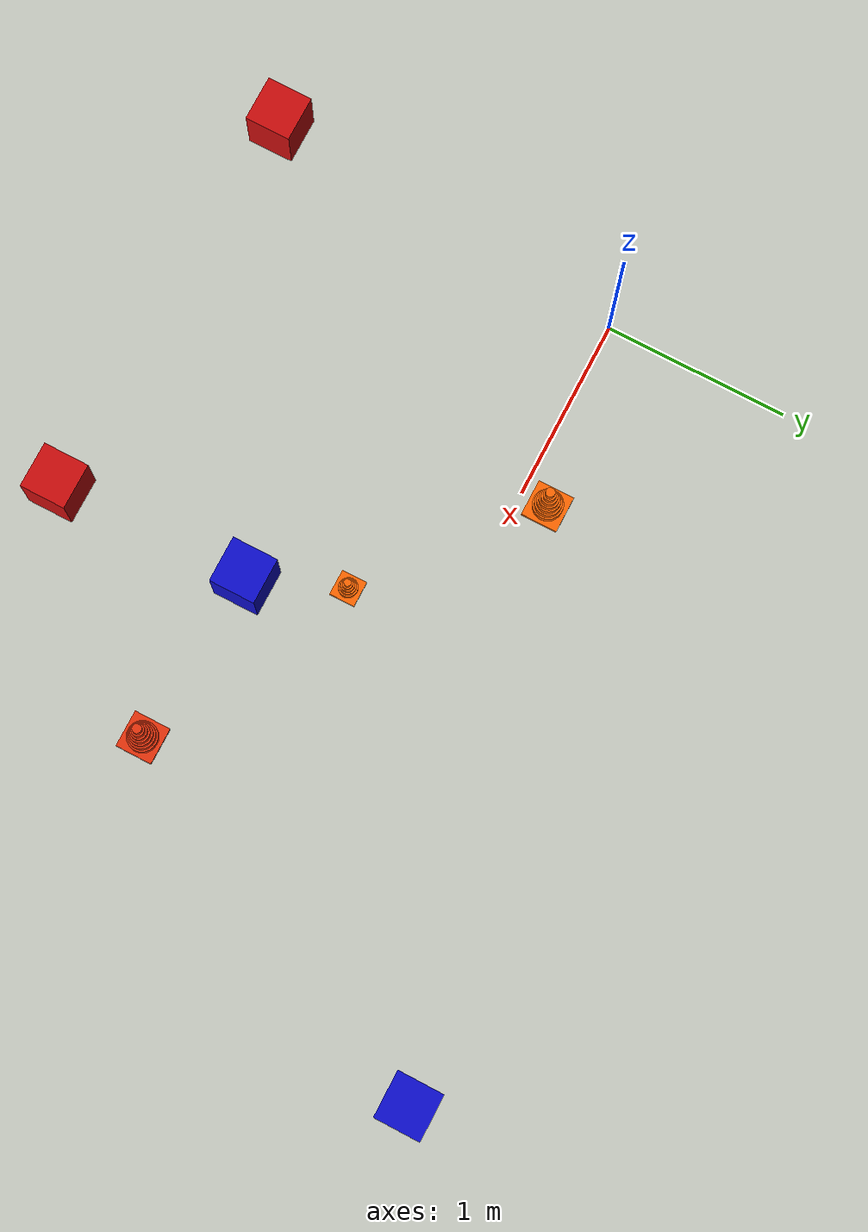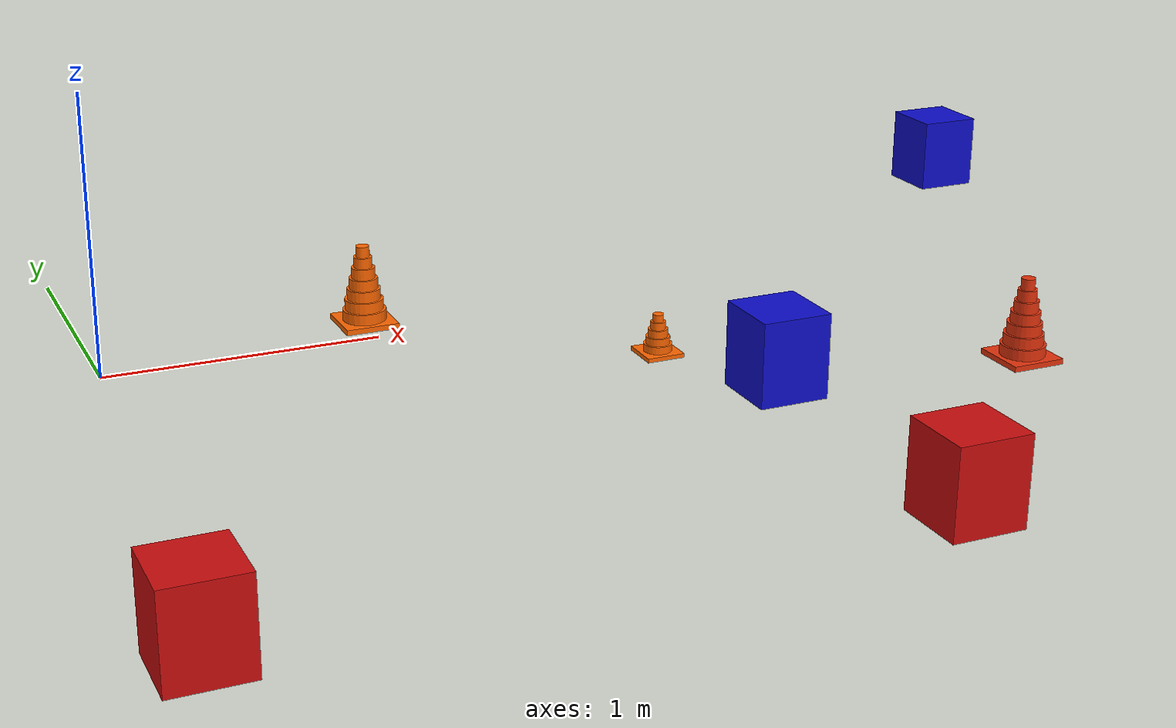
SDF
<sdf version="1.5">
 <world name="maze_6x5_v1_victimas">
  <physics type="ode">
   <max_step_size>0.001</max_step_size>
   <real_time_factor>1</real_time_factor>
   <real_time_update_rate>1000</real_time_update_rate>
   <gravity>0 0 -9.8</gravity>
  </physics>
  <plugin filename="gz-sim-physics-system" name="gz::sim::systems::Physics"/>
  <plugin filename="gz-sim-user-commands-system" name="gz::sim::systems::UserCommands"/>
  <plugin filename="gz-sim-scene-broadcaster-system" name="gz::sim::systems::SceneBroadcaster"/>
  <plugin filename="gz-sim-contact-system" name="gz::sim::systems::Contact"/>
  <plugin filename="gz-sim-sensors-system" name="gz::sim::systems::Sensors">
   <render_engine>ogre2</render_engine>
  </plugin>
  <plugin filename="gz-sim-imu-system" name="gz::sim::systems::Imu"/>
  <scene>
   <shadows>false</shadows>
   <ambient>0.2 0.2 0.2 1</ambient>
   <background>1 1 1 1</background>
   <grid>false</grid>
   <origin_visual>false</origin_visual>
  </scene>
  <include><uri>model://sun</uri></include>
  <light name="camera_spot_1_light" type="spot">
   <pose>-6 4 4 0 -1 -0.8</pose>
   <diffuse>0.5 0.5 0.5 1</diffuse>
   <specular>0.1 0.1 0.1 1</specular>
   <direction>0 0 -1</direction>
   <attenuation>
    <range>20</range>
    <constant>0.2</constant>
    <linear>0.01</linear>
    <quadratic>0.001</quadratic>
   </attenuation>
   <cast_shadows>0</cast_shadows>
   <spot><inner_angle>0.6</inner_angle><outer_angle>1</outer_angle><falloff>1</falloff></spot>
  </light>
  <light name="camera_spot_2_light" type="spot">
   <pose>5 -3 4 0 0.8 -0.6</pose>
   <diffuse>0.5 0.5 0.5 1</diffuse>
   <specular>0.1 0.1 0.1 1</specular>
   <direction>0 0 -1</direction>
   <attenuation>
    <range>20</range>
    <constant>0.3</constant>
    <linear>0.01</linear>
    <quadratic>0.001</quadratic>
   </attenuation>
   <cast_shadows>0</cast_shadows>
   <spot><inner_angle>0.6</inner_angle><outer_angle>1</outer_angle><falloff>1</falloff></spot>
  </light>
  <model name="marcas_color">
   <static>1</static>
   <link name="cuadrado_rojo_1">
    <pose>-0.1698 -2.0228 0.15 0 0 0</pose>
    <collision name="collision"><geometry><box><size>0.25 0.25 0.3</size></box></geometry></collision>
    <visual name="visual">
     <geometry><box><size>0.25 0.25 0.3</size></box></geometry>
     <material>
      <ambient>0.8 0.05 0.05 1</ambient>
      <diffuse>0.8 0.05 0.05 1</diffuse>
      <specular>0.1 0.1 0.1 1</specular>
     </material>
    </visual>
   </link>
   <link name="cuadrado_azul_1">
    <pose>2.0594 -1.0174 0.15 0 0 0</pose>
    <collision name="collision"><geometry><box><size>0.25 0.25 0.3</size></box></geometry></collision>
    <visual name="visual">
     <geometry><box><size>0.25 0.25 0.3</size></box></geometry>
     <material>
      <ambient>0.05 0.05 0.8 1</ambient>
      <diffuse>0.05 0.05 0.8 1</diffuse>
      <specular>0.1 0.1 0.1 1</specular>
     </material>
    </visual>
   </link>
   <link name="cuadrado_rojo_2">
    <pose>2.0734 -2.0864 0.15 0 0 0</pose>
    <collision name="collision"><geometry><box><size>0.25 0.25 0.3</size></box></geometry></collision>
    <visual name="visual">
     <geometry><box><size>0.25 0.25 0.3</size></box></geometry>
     <material>
      <ambient>0.8 0.05 0.05 1</ambient>
      <diffuse>0.8 0.05 0.05 1</diffuse>
      <specular>0.1 0.1 0.1 1</specular>
     </material>
    </visual>
   </link>
   <link name="cuadrado_azul_2">
    <pose>3.9811 0.9197 0.15 0 0 0</pose>
    <collision name="collision"><geometry><box><size>0.25 0.25 0.3</size></box></geometry></collision>
    <visual name="visual">
     <geometry><box><size>0.25 0.25 0.3</size></box></geometry>
     <material>
      <ambient>0.05 0.05 0.8 1</ambient>
      <diffuse>0.05 0.05 0.8 1</diffuse>
      <specular>0.1 0.1 0.1 1</specular>
     </material>
    </visual>
   </link>
  </model>
  <model name="senuelo_cono_alto">
   <static>1</static>
   <pose>1.0 0.15 0 0 0 0</pose>
   <link name="senuelo_cono_alto">
    <collision name="c0">
     <pose>0 0 0.0100 0 0 0</pose>
     <geometry><box><size>0.2 0.2 0.02</size></box></geometry>
    </collision>
    <visual name="v0">
     <pose>0 0 0.0100 0 0 0</pose>
     <geometry><box><size>0.2 0.2 0.02</size></box></geometry>
     <material>
      <ambient>1.00 0.40 0.00 1</ambient>
      <diffuse>1.00 0.40 0.00 1</diffuse>
      <specular>0.1 0.1 0.1 1</specular>
     </material>
    </visual>
    <collision name="c1">
     <pose>0 0 0.0400 0 0 0</pose>
     <geometry><cylinder><radius>0.0804</radius><length>0.0400</length></cylinder></geometry>
    </collision>
    <visual name="v1">
     <pose>0 0 0.0400 0 0 0</pose>
     <geometry><cylinder><radius>0.0804</radius><length>0.0400</length></cylinder></geometry>
     <material>
      <ambient>1.00 0.40 0.00 1</ambient>
      <diffuse>1.00 0.40 0.00 1</diffuse>
      <specular>0.1 0.1 0.1 1</specular>
     </material>
    </visual>
    <collision name="c2">
     <pose>0 0 0.0800 0 0 0</pose>
     <geometry><cylinder><radius>0.0711</radius><length>0.0400</length></cylinder></geometry>
    </collision>
    <visual name="v2">
     <pose>0 0 0.0800 0 0 0</pose>
     <geometry><cylinder><radius>0.0711</radius><length>0.0400</length></cylinder></geometry>
     <material>
      <ambient>1.00 0.40 0.00 1</ambient>
      <diffuse>1.00 0.40 0.00 1</diffuse>
      <specular>0.1 0.1 0.1 1</specular>
     </material>
    </visual>
    <collision name="c3">
     <pose>0 0 0.1200 0 0 0</pose>
     <geometry><cylinder><radius>0.0618</radius><length>0.0400</length></cylinder></geometry>
    </collision>
    <visual name="v3">
     <pose>0 0 0.1200 0 0 0</pose>
     <geometry><cylinder><radius>0.0618</radius><length>0.0400</length></cylinder></geometry>
     <material>
      <ambient>1.00 0.40 0.00 1</ambient>
      <diffuse>1.00 0.40 0.00 1</diffuse>
      <specular>0.1 0.1 0.1 1</specular>
     </material>
    </visual>
    <collision name="c4">
     <pose>0 0 0.1600 0 0 0</pose>
     <geometry><cylinder><radius>0.0525</radius><length>0.0400</length></cylinder></geometry>
    </collision>
    <visual name="v4">
     <pose>0 0 0.1600 0 0 0</pose>
     <geometry><cylinder><radius>0.0525</radius><length>0.0400</length></cylinder></geometry>
     <material>
      <ambient>1.00 0.40 0.00 1</ambient>
      <diffuse>1.00 0.40 0.00 1</diffuse>
      <specular>0.1 0.1 0.1 1</specular>
     </material>
    </visual>
    <collision name="c5">
     <pose>0 0 0.2000 0 0 0</pose>
     <geometry><cylinder><radius>0.0432</radius><length>0.0400</length></cylinder></geometry>
    </collision>
    <visual name="v5">
     <pose>0 0 0.2000 0 0 0</pose>
     <geometry><cylinder><radius>0.0432</radius><length>0.0400</length></cylinder></geometry>
     <material>
      <ambient>1.00 0.40 0.00 1</ambient>
      <diffuse>1.00 0.40 0.00 1</diffuse>
      <specular>0.1 0.1 0.1 1</specular>
     </material>
    </visual>
    <collision name="c6">
     <pose>0 0 0.2400 0 0 0</pose>
     <geometry><cylinder><radius>0.0339</radius><length>0.0400</length></cylinder></geometry>
    </collision>
    <visual name="v6">
     <pose>0 0 0.2400 0 0 0</pose>
     <geometry><cylinder><radius>0.0339</radius><length>0.0400</length></cylinder></geometry>
     <material>
      <ambient>1.00 0.40 0.00 1</ambient>
      <diffuse>1.00 0.40 0.00 1</diffuse>
      <specular>0.1 0.1 0.1 1</specular>
     </material>
    </visual>
    <collision name="c7">
     <pose>0 0 0.2800 0 0 0</pose>
     <geometry><cylinder><radius>0.0246</radius><length>0.0400</length></cylinder></geometry>
    </collision>
    <visual name="v7">
     <pose>0 0 0.2800 0 0 0</pose>
     <geometry><cylinder><radius>0.0246</radius><length>0.0400</length></cylinder></geometry>
     <material>
      <ambient>1.00 0.40 0.00 1</ambient>
      <diffuse>1.00 0.40 0.00 1</diffuse>
      <specular>0.1 0.1 0.1 1</specular>
     </material>
    </visual>
   </link>
  </model>
  <model name="senuelo_cono_bajo">
   <static>1</static>
   <pose>1.85 -0.55 0 0 0 0</pose>
   <link name="senuelo_cono_bajo">
    <collision name="c0">
     <pose>0 0 0.0075 0 0 0</pose>
     <geometry><box><size>0.14 0.14 0.015</size></box></geometry>
    </collision>
    <visual name="v0">
     <pose>0 0 0.0075 0 0 0</pose>
     <geometry><box><size>0.14 0.14 0.015</size></box></geometry>
     <material>
      <ambient>1.00 0.40 0.00 1</ambient>
      <diffuse>1.00 0.40 0.00 1</diffuse>
      <specular>0.1 0.1 0.1 1</specular>
     </material>
    </visual>
    <collision name="c1">
     <pose>0 0 0.0285 0 0 0</pose>
     <geometry><cylinder><radius>0.0510</radius><length>0.0270</length></cylinder></geometry>
    </collision>
    <visual name="v1">
     <pose>0 0 0.0285 0 0 0</pose>
     <geometry><cylinder><radius>0.0510</radius><length>0.0270</length></cylinder></geometry>
     <material>
      <ambient>1.00 0.40 0.00 1</ambient>
      <diffuse>1.00 0.40 0.00 1</diffuse>
      <specular>0.1 0.1 0.1 1</specular>
     </material>
    </visual>
    <collision name="c2">
     <pose>0 0 0.0555 0 0 0</pose>
     <geometry><cylinder><radius>0.0430</radius><length>0.0270</length></cylinder></geometry>
    </collision>
    <visual name="v2">
     <pose>0 0 0.0555 0 0 0</pose>
     <geometry><cylinder><radius>0.0430</radius><length>0.0270</length></cylinder></geometry>
     <material>
      <ambient>1.00 0.40 0.00 1</ambient>
      <diffuse>1.00 0.40 0.00 1</diffuse>
      <specular>0.1 0.1 0.1 1</specular>
     </material>
    </visual>
    <collision name="c3">
     <pose>0 0 0.0825 0 0 0</pose>
     <geometry><cylinder><radius>0.0350</radius><length>0.0270</length></cylinder></geometry>
    </collision>
    <visual name="v3">
     <pose>0 0 0.0825 0 0 0</pose>
     <geometry><cylinder><radius>0.0350</radius><length>0.0270</length></cylinder></geometry>
     <material>
      <ambient>1.00 0.40 0.00 1</ambient>
      <diffuse>1.00 0.40 0.00 1</diffuse>
      <specular>0.1 0.1 0.1 1</specular>
     </material>
    </visual>
    <collision name="c4">
     <pose>0 0 0.1095 0 0 0</pose>
     <geometry><cylinder><radius>0.0270</radius><length>0.0270</length></cylinder></geometry>
    </collision>
    <visual name="v4">
     <pose>0 0 0.1095 0 0 0</pose>
     <geometry><cylinder><radius>0.0270</radius><length>0.0270</length></cylinder></geometry>
     <material>
      <ambient>1.00 0.40 0.00 1</ambient>
      <diffuse>1.00 0.40 0.00 1</diffuse>
      <specular>0.1 0.1 0.1 1</specular>
     </material>
    </visual>
    <collision name="c5">
     <pose>0 0 0.1365 0 0 0</pose>
     <geometry><cylinder><radius>0.0190</radius><length>0.0270</length></cylinder></geometry>
    </collision>
    <visual name="v5">
     <pose>0 0 0.1365 0 0 0</pose>
     <geometry><cylinder><radius>0.0190</radius><length>0.0270</length></cylinder></geometry>
     <material>
      <ambient>1.00 0.40 0.00 1</ambient>
      <diffuse>1.00 0.40 0.00 1</diffuse>
      <specular>0.1 0.1 0.1 1</specular>
     </material>
    </visual>
   </link>
  </model>
  <model name="senuelo_cono_rojo">
   <static>1</static>
   <pose>3.0 -1.1 0 0 0 0</pose>
   <link name="senuelo_cono_rojo">
    <collision name="c0">
     <pose>0 0 0.0100 0 0 0</pose>
     <geometry><box><size>0.2 0.2 0.02</size></box></geometry>
    </collision>
    <visual name="v0">
     <pose>0 0 0.0100 0 0 0</pose>
     <geometry><box><size>0.2 0.2 0.02</size></box></geometry>
     <material>
      <ambient>0.90 0.20 0.05 1</ambient>
      <diffuse>0.90 0.20 0.05 1</diffuse>
      <specular>0.1 0.1 0.1 1</specular>
     </material>
    </visual>
    <collision name="c1">
     <pose>0 0 0.0400 0 0 0</pose>
     <geometry><cylinder><radius>0.0804</radius><length>0.0400</length></cylinder></geometry>
    </collision>
    <visual name="v1">
     <pose>0 0 0.0400 0 0 0</pose>
     <geometry><cylinder><radius>0.0804</radius><length>0.0400</length></cylinder></geometry>
     <material>
      <ambient>0.90 0.20 0.05 1</ambient>
      <diffuse>0.90 0.20 0.05 1</diffuse>
      <specular>0.1 0.1 0.1 1</specular>
     </material>
    </visual>
    <collision name="c2">
     <pose>0 0 0.0800 0 0 0</pose>
     <geometry><cylinder><radius>0.0711</radius><length>0.0400</length></cylinder></geometry>
    </collision>
    <visual name="v2">
     <pose>0 0 0.0800 0 0 0</pose>
     <geometry><cylinder><radius>0.0711</radius><length>0.0400</length></cylinder></geometry>
     <material>
      <ambient>0.90 0.20 0.05 1</ambient>
      <diffuse>0.90 0.20 0.05 1</diffuse>
      <specular>0.1 0.1 0.1 1</specular>
     </material>
    </visual>
    <collision name="c3">
     <pose>0 0 0.1200 0 0 0</pose>
     <geometry><cylinder><radius>0.0618</radius><length>0.0400</length></cylinder></geometry>
    </collision>
    <visual name="v3">
     <pose>0 0 0.1200 0 0 0</pose>
     <geometry><cylinder><radius>0.0618</radius><length>0.0400</length></cylinder></geometry>
     <material>
      <ambient>0.90 0.20 0.05 1</ambient>
      <diffuse>0.90 0.20 0.05 1</diffuse>
      <specular>0.1 0.1 0.1 1</specular>
     </material>
    </visual>
    <collision name="c4">
     <pose>0 0 0.1600 0 0 0</pose>
     <geometry><cylinder><radius>0.0525</radius><length>0.0400</length></cylinder></geometry>
    </collision>
    <visual name="v4">
     <pose>0 0 0.1600 0 0 0</pose>
     <geometry><cylinder><radius>0.0525</radius><length>0.0400</length></cylinder></geometry>
     <material>
      <ambient>0.90 0.20 0.05 1</ambient>
      <diffuse>0.90 0.20 0.05 1</diffuse>
      <specular>0.1 0.1 0.1 1</specular>
     </material>
    </visual>
    <collision name="c5">
     <pose>0 0 0.2000 0 0 0</pose>
     <geometry><cylinder><radius>0.0432</radius><length>0.0400</length></cylinder></geometry>
    </collision>
    <visual name="v5">
     <pose>0 0 0.2000 0 0 0</pose>
     <geometry><cylinder><radius>0.0432</radius><length>0.0400</length></cylinder></geometry>
     <material>
      <ambient>0.90 0.20 0.05 1</ambient>
      <diffuse>0.90 0.20 0.05 1</diffuse>
      <specular>0.1 0.1 0.1 1</specular>
     </material>
    </visual>
    <collision name="c6">
     <pose>0 0 0.2400 0 0 0</pose>
     <geometry><cylinder><radius>0.0339</radius><length>0.0400</length></cylinder></geometry>
    </collision>
    <visual name="v6">
     <pose>0 0 0.2400 0 0 0</pose>
     <geometry><cylinder><radius>0.0339</radius><length>0.0400</length></cylinder></geometry>
     <material>
      <ambient>0.90 0.20 0.05 1</ambient>
      <diffuse>0.90 0.20 0.05 1</diffuse>
      <specular>0.1 0.1 0.1 1</specular>
     </material>
    </visual>
    <collision name="c7">
     <pose>0 0 0.2800 0 0 0</pose>
     <geometry><cylinder><radius>0.0246</radius><length>0.0400</length></cylinder></geometry>
    </collision>
    <visual name="v7">
     <pose>0 0 0.2800 0 0 0</pose>
     <geometry><cylinder><radius>0.0246</radius><length>0.0400</length></cylinder></geometry>
     <material>
      <ambient>0.90 0.20 0.05 1</ambient>
      <diffuse>0.90 0.20 0.05 1</diffuse>
      <specular>0.1 0.1 0.1 1</specular>
     </material>
    </visual>
   </link>
  </model>
 </world>
</sdf>
